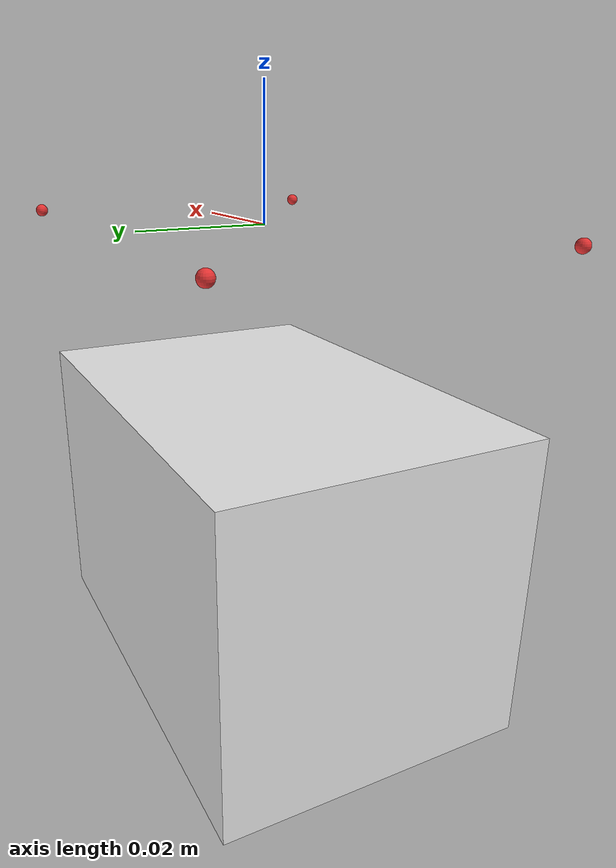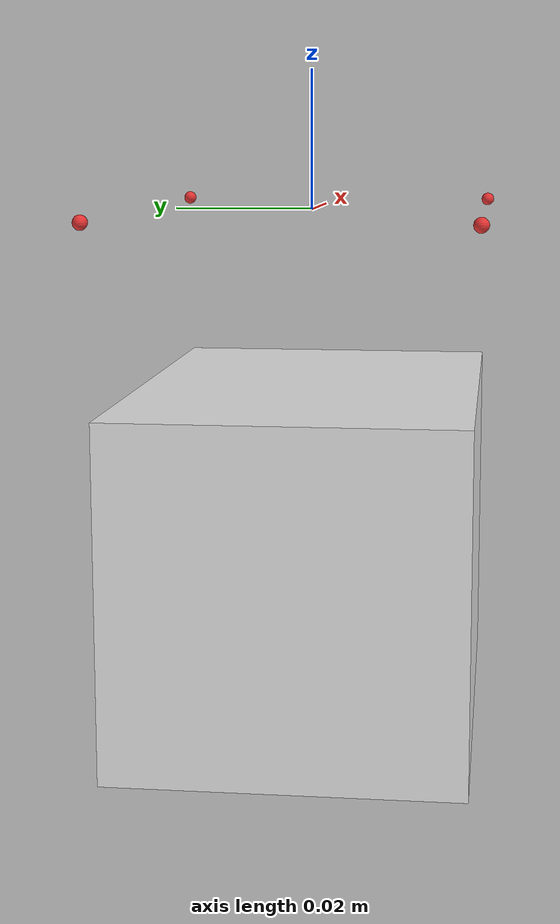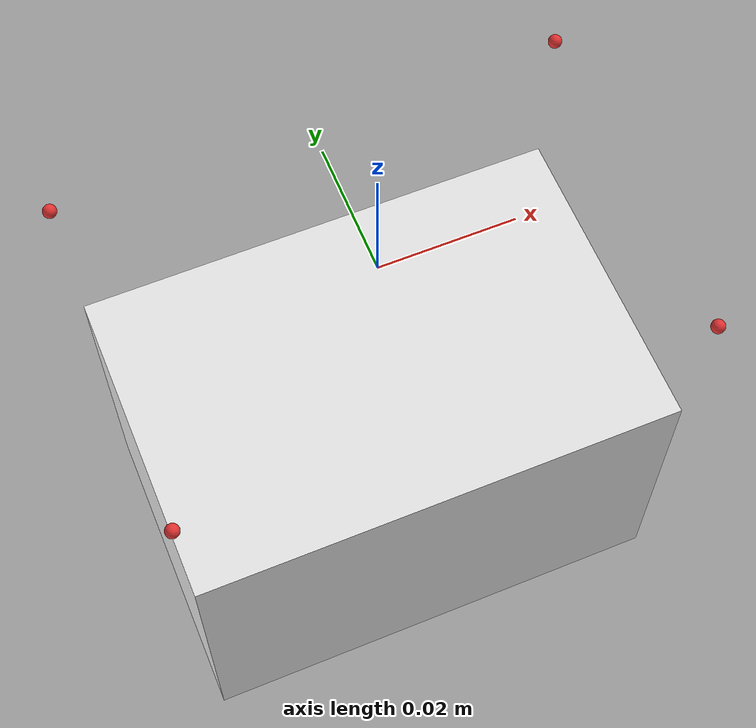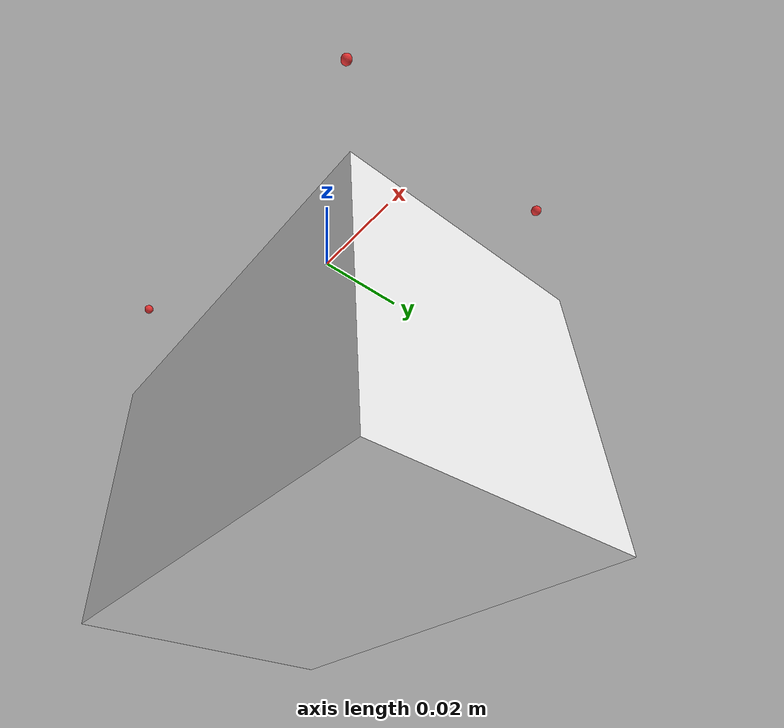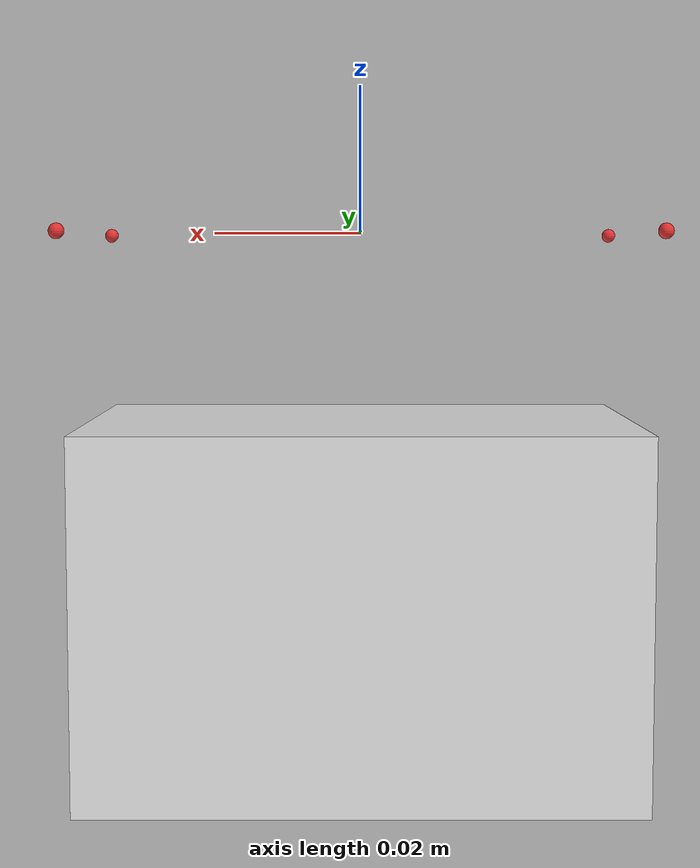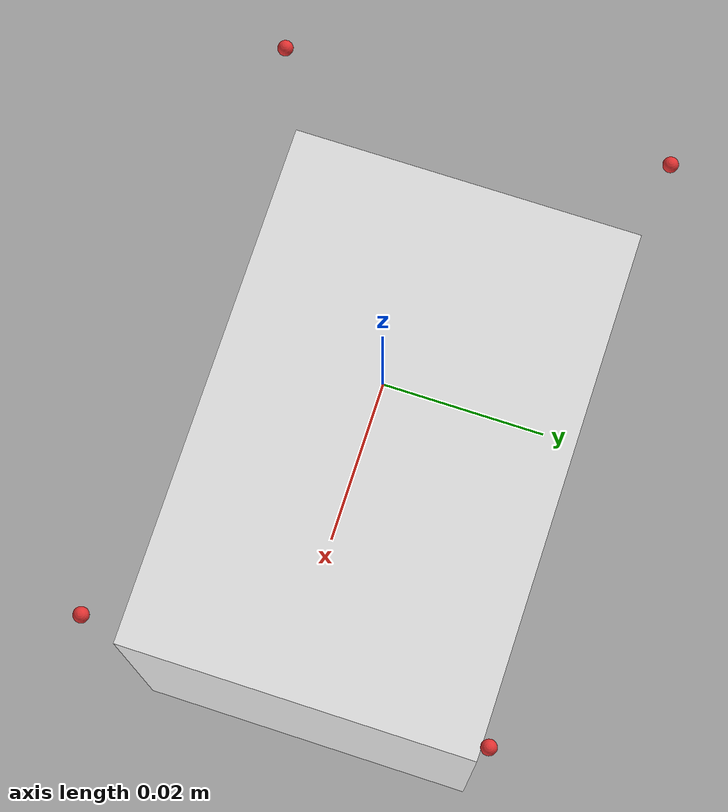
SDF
<?xml version="1.0"?>
<sdf version="1.7">
  <model name="foam_brick">
    <link name="base_link">
      <inertial>
        <pose>0 0 0.025 0 0 0 </pose>
        <mass>0.028</mass>
        <inertia>
          <ixx>1.17e-5</ixx>
          <ixy>0</ixy>
          <ixz>0</ixz>
          <iyy>1.9e-5</iyy>
          <iyz>0</iyz>
          <izz>1.9e-5</izz>
        </inertia>
      </inertial>
      <collision name="box_collision">
        <pose>0 0 0.0 0 0 0</pose>
        <geometry>
          <box>
            <size>0.074 0.049 0.049</size>
          </box>
        </geometry>
      </collision>
      <collision name="point_collision1">
        <pose>0.0375 0.025 0 0 0 0</pose>
        <geometry>
          <sphere>
            <radius>1e-7</radius>
          </sphere>
        </geometry>
      </collision>
      <collision name="point_collision2">
        <pose>0.0375 -0.025 0 0 0 0</pose>
        <geometry>
          <sphere>
            <radius>1e-7</radius>
          </sphere>
        </geometry>
      </collision>
      <collision name="point_collision3">
        <pose>-0.0375 0.025 0 0 0 0</pose>
        <geometry>
          <sphere>
            <radius>1e-7</radius>
          </sphere>
        </geometry>
      </collision>
      <collision name="point_collision4">
        <pose>-0.0375 -0.025 0 0 0 0</pose>
        <geometry>
          <sphere>
            <radius>1e-7</radius>
          </sphere>
        </geometry>
      </collision>

      <!--
      Use the collision elements (with sphere radius exaggerated) as visual elements, too.
      -->
      <visual name="box_collision">
        <pose>0 0 -0.05 0 0 0</pose>
        <geometry>
          <box>
            <size>0.074 0.049 0.049</size>
          </box>
        </geometry>
        <material>
          <diffuse>.9 .9 .9 1.0</diffuse>
        </material>
      </visual>
      <visual name="point_collision1">
        <pose>0.0375 0.025 0 0 0 0</pose>
        <geometry>
          <sphere>
            <radius>1e-3</radius>
          </sphere>
        </geometry>
        <material>
          <diffuse>.9 .2 .2 1.0</diffuse>
        </material>
      </visual>
      <visual name="point_collision2">
        <pose>0.0375 -0.025 0 0 0 0</pose>
        <geometry>
          <sphere>
            <radius>1e-3</radius>
          </sphere>
        </geometry>
        <material>
          <diffuse>.9 .2 .2 1.0</diffuse>
        </material>
      </visual>
      <visual name="point_collision3">
        <pose>-0.0375 0.025 0 0 0 0</pose>
        <geometry>
          <sphere>
            <radius>1e-3</radius>
          </sphere>
        </geometry>
        <material>
          <diffuse>.9 .2 .2 1.0</diffuse>
        </material>
      </visual>
      <visual name="point_collision4">
        <pose>-0.0375 -0.025 0 0 0 0</pose>
        <geometry>
          <sphere>
            <radius>1e-3</radius>
          </sphere>
        </geometry>
        <material>
          <diffuse>.9 .2 .2 1.0</diffuse>
        </material>
      </visual>

    </link>
  </model>
</sdf>
